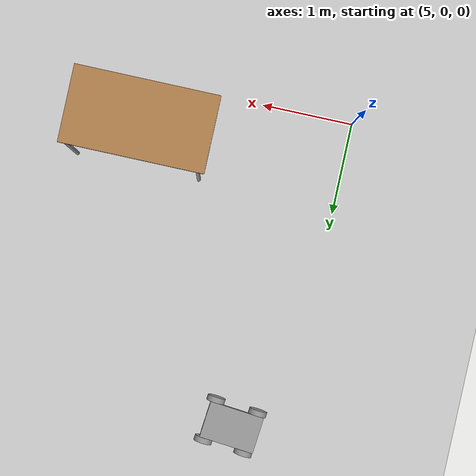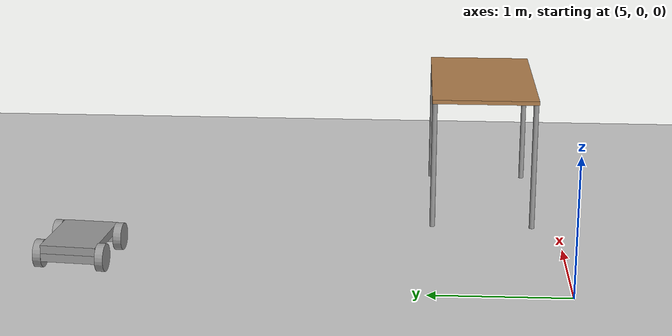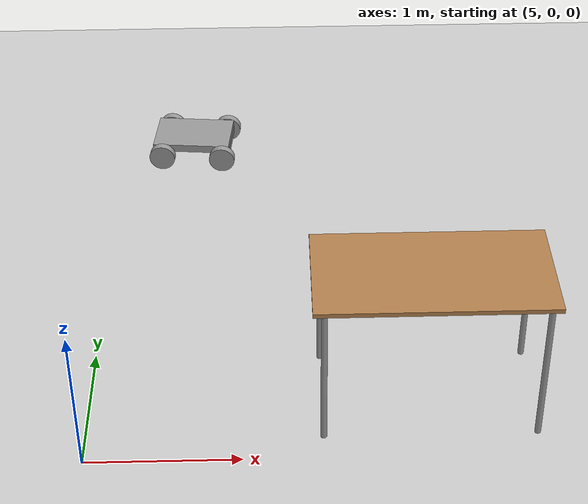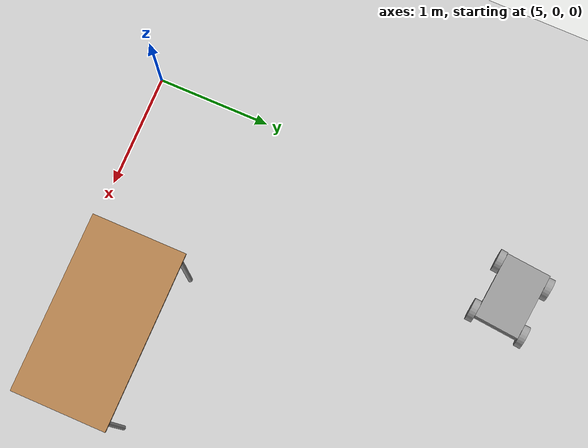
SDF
<sdf version="1.6">
 <world name="default">
  <model name="ground_plane">
   <static>1</static>
   <link name="link">
    <collision name="collision">
     <geometry><plane><normal>0 0 1</normal><size>100 100</size></plane></geometry>
     <surface>
      <contact><collide_bitmask>65535</collide_bitmask></contact>
      <friction><ode><mu>100</mu><mu2>50</mu2></ode></friction>
     </surface>
    </collision>
    <visual name="visual">
     <cast_shadows>0</cast_shadows>
     <geometry><plane><normal>0 0 1</normal><size>100 100</size></plane></geometry>
     <material>
      <script><uri>file://media/materials/scripts/gazebo.material</uri><name>Gazebo/Grey</name></script>
     </material>
    </visual>
   </link>
  </model>
  <model name="FourWheeledRobot_0">
   <link name="link_0">
    <pose>-0.26 0 -0.008571 0 -0 0</pose>
    <inertial>
     <mass>1</mass>
     <inertia>
      <ixx>0.166667</ixx>
      <ixy>0</ixy>
      <ixz>0</ixz>
      <iyy>0.166667</iyy>
      <iyz>0</iyz>
      <izz>0.166667</izz>
     </inertia>
    </inertial>
    <visual name="visual">
     <geometry><box><size>0.1 0.4 0.06</size></box></geometry>
     <material>
      <lighting>1</lighting>
      <script><uri>file://media/materials/scripts/gazebo.material</uri><name>Gazebo/Grey</name></script>
      <shader type="pixel"><normal_map>__default__</normal_map></shader>
      <ambient>0.3 0.3 0.3 1</ambient>
      <diffuse>0.7 0.7 0.7 1</diffuse>
      <specular>0.01 0.01 0.01 1</specular>
      <emissive>0 0 0 1</emissive>
     </material>
    </visual>
    <collision name="collision">
     <geometry><box><size>0.1 0.4 0.06</size></box></geometry>
     <surface>
      <friction>
       <ode><mu>1</mu><mu2>1</mu2><fdir1>0 0 0</fdir1><slip1>0</slip1><slip2>0</slip2></ode>
       <torsional>
        <coefficient>1</coefficient>
        <patch_radius>0</patch_radius>
        <surface_radius>0</surface_radius>
        <use_patch_radius>1</use_patch_radius>
        <ode><slip>0</slip></ode>
       </torsional>
      </friction>
      <bounce><restitution_coefficient>0</restitution_coefficient><threshold>1e+06</threshold></bounce>
      <contact>
       <collide_without_contact>0</collide_without_contact>
       <collide_without_contact_bitmask>1</collide_without_contact_bitmask>
       <collide_bitmask>1</collide_bitmask>
       <ode>
        <soft_cfm>0</soft_cfm>
        <soft_erp>0.2</soft_erp>
        <kp>1e+13</kp>
        <kd>1</kd>
        <max_vel>0.01</max_vel>
        <min_depth>0</min_depth>
       </ode>
       <bullet>
        <split_impulse>1</split_impulse>
        <split_impulse_penetration_threshold>-0.01</split_impulse_penetration_threshold>
        <soft_cfm>0</soft_cfm>
        <soft_erp>0.2</soft_erp>
        <kp>1e+13</kp>
        <kd>1</kd>
       </bullet>
      </contact>
     </surface>
    </collision>
   </link>
   <link name="link_0_clone">
    <pose>0.24 0 -0.008571 0 -0 0</pose>
    <inertial>
     <mass>1</mass>
     <inertia>
      <ixx>0.166667</ixx>
      <ixy>0</ixy>
      <ixz>0</ixz>
      <iyy>0.166667</iyy>
      <iyz>0</iyz>
      <izz>0.166667</izz>
     </inertia>
    </inertial>
    <visual name="visual">
     <geometry><box><size>0.1 0.4 0.06</size></box></geometry>
     <material>
      <lighting>1</lighting>
      <script><uri>file://media/materials/scripts/gazebo.material</uri><name>Gazebo/Grey</name></script>
      <shader type="pixel"><normal_map>__default__</normal_map></shader>
      <ambient>0.3 0.3 0.3 1</ambient>
      <diffuse>0.7 0.7 0.7 1</diffuse>
      <specular>0.01 0.01 0.01 1</specular>
      <emissive>0 0 0 1</emissive>
     </material>
    </visual>
    <collision name="collision">
     <geometry><box><size>0.1 0.4 0.06</size></box></geometry>
     <surface>
      <friction>
       <ode><mu>1</mu><mu2>1</mu2><fdir1>0 0 0</fdir1><slip1>0</slip1><slip2>0</slip2></ode>
       <torsional>
        <coefficient>1</coefficient>
        <patch_radius>0</patch_radius>
        <surface_radius>0</surface_radius>
        <use_patch_radius>1</use_patch_radius>
        <ode><slip>0</slip></ode>
       </torsional>
      </friction>
      <bounce><restitution_coefficient>0</restitution_coefficient><threshold>1e+06</threshold></bounce>
      <contact>
       <collide_without_contact>0</collide_without_contact>
       <collide_without_contact_bitmask>1</collide_without_contact_bitmask>
       <collide_bitmask>1</collide_bitmask>
       <ode>
        <soft_cfm>0</soft_cfm>
        <soft_erp>0.2</soft_erp>
        <kp>1e+13</kp>
        <kd>1</kd>
        <max_vel>0.01</max_vel>
        <min_depth>0</min_depth>
       </ode>
       <bullet>
        <split_impulse>1</split_impulse>
        <split_impulse_penetration_threshold>-0.01</split_impulse_penetration_threshold>
        <soft_cfm>0</soft_cfm>
        <soft_erp>0.2</soft_erp>
        <kp>1e+13</kp>
        <kd>1</kd>
       </bullet>
      </contact>
     </surface>
    </collision>
   </link>
   <link name="link_1">
    <pose>-0.01 0 0.051429 0 -0 0</pose>
    <inertial>
     <mass>1</mass>
     <inertia>
      <ixx>0.166667</ixx>
      <ixy>0</ixy>
      <ixz>0</ixz>
      <iyy>0.166667</iyy>
      <iyz>0</iyz>
      <izz>0.166667</izz>
     </inertia>
    </inertial>
    <visual name="visual">
     <geometry><box><size>0.6 0.4 0.06</size></box></geometry>
     <material>
      <lighting>1</lighting>
      <script><uri>file://media/materials/scripts/gazebo.material</uri><name>Gazebo/Grey</name></script>
      <shader type="pixel"><normal_map>__default__</normal_map></shader>
      <ambient>0.3 0.3 0.3 1</ambient>
      <diffuse>0.7 0.7 0.7 1</diffuse>
      <specular>0.01 0.01 0.01 1</specular>
      <emissive>0 0 0 1</emissive>
     </material>
    </visual>
    <collision name="collision">
     <geometry><box><size>0.6 0.4 0.06</size></box></geometry>
     <surface>
      <friction>
       <ode><mu>1</mu><mu2>1</mu2><fdir1>0 0 0</fdir1><slip1>0</slip1><slip2>0</slip2></ode>
       <torsional>
        <coefficient>1</coefficient>
        <patch_radius>0</patch_radius>
        <surface_radius>0</surface_radius>
        <use_patch_radius>1</use_patch_radius>
        <ode><slip>0</slip></ode>
       </torsional>
      </friction>
      <bounce><restitution_coefficient>0</restitution_coefficient><threshold>1e+06</threshold></bounce>
      <contact>
       <collide_without_contact>0</collide_without_contact>
       <collide_without_contact_bitmask>1</collide_without_contact_bitmask>
       <collide_bitmask>1</collide_bitmask>
       <ode>
        <soft_cfm>0</soft_cfm>
        <soft_erp>0.2</soft_erp>
        <kp>1e+13</kp>
        <kd>1</kd>
        <max_vel>0.01</max_vel>
        <min_depth>0</min_depth>
       </ode>
       <bullet>
        <split_impulse>1</split_impulse>
        <split_impulse_penetration_threshold>-0.01</split_impulse_penetration_threshold>
        <soft_cfm>0</soft_cfm>
        <soft_erp>0.2</soft_erp>
        <kp>1e+13</kp>
        <kd>1</kd>
       </bullet>
      </contact>
     </surface>
    </collision>
   </link>
   <link name="link_2">
    <pose>-0.235 -0.230013 -0.008571 1.5707 -0 0</pose>
    <inertial>
     <mass>1</mass>
     <inertia><ixx>0.145833</ixx><ixy>0</ixy><ixz>0</ixz><iyy>0.145833</iyy><iyz>0</iyz><izz>0.125</izz></inertia>
    </inertial>
    <visual name="visual">
     <geometry><cylinder><radius>0.1</radius><length>0.06</length></cylinder></geometry>
     <material>
      <lighting>1</lighting>
      <script><uri>file://media/materials/scripts/gazebo.material</uri><name>Gazebo/Grey</name></script>
      <shader type="pixel"><normal_map>__default__</normal_map></shader>
      <ambient>0.3 0.3 0.3 1</ambient>
      <diffuse>0.7 0.7 0.7 1</diffuse>
      <specular>0.01 0.01 0.01 1</specular>
      <emissive>0 0 0 1</emissive>
     </material>
    </visual>
    <collision name="collision">
     <geometry><cylinder><radius>0.1</radius><length>0.06</length></cylinder></geometry>
     <surface>
      <friction>
       <ode><mu>1</mu><mu2>1</mu2><fdir1>0 0 0</fdir1><slip1>0</slip1><slip2>0</slip2></ode>
       <torsional>
        <coefficient>1</coefficient>
        <patch_radius>0</patch_radius>
        <surface_radius>0</surface_radius>
        <use_patch_radius>1</use_patch_radius>
        <ode><slip>0</slip></ode>
       </torsional>
      </friction>
      <bounce><restitution_coefficient>0</restitution_coefficient><threshold>1e+06</threshold></bounce>
      <contact>
       <collide_without_contact>0</collide_without_contact>
       <collide_without_contact_bitmask>1</collide_without_contact_bitmask>
       <collide_bitmask>1</collide_bitmask>
       <ode>
        <soft_cfm>0</soft_cfm>
        <soft_erp>0.2</soft_erp>
        <kp>1e+13</kp>
        <kd>1</kd>
        <max_vel>0.01</max_vel>
        <min_depth>0</min_depth>
       </ode>
       <bullet>
        <split_impulse>1</split_impulse>
        <split_impulse_penetration_threshold>-0.01</split_impulse_penetration_threshold>
        <soft_cfm>0</soft_cfm>
        <soft_erp>0.2</soft_erp>
        <kp>1e+13</kp>
        <kd>1</kd>
       </bullet>
      </contact>
     </surface>
    </collision>
   </link>
   <link name="link_2_clone">
    <pose>-0.215 0.23001 -0.008571 1.5707 -0 0</pose>
    <inertial>
     <mass>1</mass>
     <inertia><ixx>0.145833</ixx><ixy>0</ixy><ixz>0</ixz><iyy>0.145833</iyy><iyz>0</iyz><izz>0.125</izz></inertia>
    </inertial>
    <visual name="visual">
     <geometry><cylinder><radius>0.1</radius><length>0.06</length></cylinder></geometry>
     <material>
      <lighting>1</lighting>
      <script><uri>file://media/materials/scripts/gazebo.material</uri><name>Gazebo/Grey</name></script>
      <shader type="pixel"><normal_map>__default__</normal_map></shader>
      <ambient>0.3 0.3 0.3 1</ambient>
      <diffuse>0.7 0.7 0.7 1</diffuse>
      <specular>0.01 0.01 0.01 1</specular>
      <emissive>0 0 0 1</emissive>
     </material>
    </visual>
    <collision name="collision">
     <geometry><cylinder><radius>0.1</radius><length>0.06</length></cylinder></geometry>
     <surface>
      <friction>
       <ode><mu>1</mu><mu2>1</mu2><fdir1>0 0 0</fdir1><slip1>0</slip1><slip2>0</slip2></ode>
       <torsional>
        <coefficient>1</coefficient>
        <patch_radius>0</patch_radius>
        <surface_radius>0</surface_radius>
        <use_patch_radius>1</use_patch_radius>
        <ode><slip>0</slip></ode>
       </torsional>
      </friction>
      <bounce><restitution_coefficient>0</restitution_coefficient><threshold>1e+06</threshold></bounce>
      <contact>
       <collide_without_contact>0</collide_without_contact>
       <collide_without_contact_bitmask>1</collide_without_contact_bitmask>
       <collide_bitmask>1</collide_bitmask>
       <ode>
        <soft_cfm>0</soft_cfm>
        <soft_erp>0.2</soft_erp>
        <kp>1e+13</kp>
        <kd>1</kd>
        <max_vel>0.01</max_vel>
        <min_depth>0</min_depth>
       </ode>
       <bullet>
        <split_impulse>1</split_impulse>
        <split_impulse_penetration_threshold>-0.01</split_impulse_penetration_threshold>
        <soft_cfm>0</soft_cfm>
        <soft_erp>0.2</soft_erp>
        <kp>1e+13</kp>
        <kd>1</kd>
       </bullet>
      </contact>
     </surface>
    </collision>
   </link>
   <link name="link_2_clone_0">
    <pose>0.24 -0.230009 -0.008571 1.5707 -0 0</pose>
    <inertial>
     <mass>1</mass>
     <inertia><ixx>0.145833</ixx><ixy>0</ixy><ixz>0</ixz><iyy>0.145833</iyy><iyz>0</iyz><izz>0.125</izz></inertia>
    </inertial>
    <visual name="visual">
     <geometry><cylinder><radius>0.1</radius><length>0.06</length></cylinder></geometry>
     <material>
      <lighting>1</lighting>
      <script><uri>file://media/materials/scripts/gazebo.material</uri><name>Gazebo/Grey</name></script>
      <shader type="pixel"><normal_map>__default__</normal_map></shader>
      <ambient>0.3 0.3 0.3 1</ambient>
      <diffuse>0.7 0.7 0.7 1</diffuse>
      <specular>0.01 0.01 0.01 1</specular>
      <emissive>0 0 0 1</emissive>
     </material>
    </visual>
    <collision name="collision">
     <geometry><cylinder><radius>0.1</radius><length>0.06</length></cylinder></geometry>
     <surface>
      <friction>
       <ode><mu>1</mu><mu2>1</mu2><fdir1>0 0 0</fdir1><slip1>0</slip1><slip2>0</slip2></ode>
       <torsional>
        <coefficient>1</coefficient>
        <patch_radius>0</patch_radius>
        <surface_radius>0</surface_radius>
        <use_patch_radius>1</use_patch_radius>
        <ode><slip>0</slip></ode>
       </torsional>
      </friction>
      <bounce><restitution_coefficient>0</restitution_coefficient><threshold>1e+06</threshold></bounce>
      <contact>
       <collide_without_contact>0</collide_without_contact>
       <collide_without_contact_bitmask>1</collide_without_contact_bitmask>
       <collide_bitmask>1</collide_bitmask>
       <ode>
        <soft_cfm>0</soft_cfm>
        <soft_erp>0.2</soft_erp>
        <kp>1e+13</kp>
        <kd>1</kd>
        <max_vel>0.01</max_vel>
        <min_depth>0</min_depth>
       </ode>
       <bullet>
        <split_impulse>1</split_impulse>
        <split_impulse_penetration_threshold>-0.01</split_impulse_penetration_threshold>
        <soft_cfm>0</soft_cfm>
        <soft_erp>0.2</soft_erp>
        <kp>1e+13</kp>
        <kd>1</kd>
       </bullet>
      </contact>
     </surface>
    </collision>
   </link>
   <link name="link_2_clone_1">
    <pose>0.24 0.23001 -0.008571 1.5707 -0 0</pose>
    <inertial>
     <mass>1</mass>
     <inertia><ixx>0.145833</ixx><ixy>0</ixy><ixz>0</ixz><iyy>0.145833</iyy><iyz>0</iyz><izz>0.125</izz></inertia>
    </inertial>
    <visual name="visual">
     <geometry><cylinder><radius>0.1</radius><length>0.06</length></cylinder></geometry>
     <material>
      <lighting>1</lighting>
      <script><uri>file://media/materials/scripts/gazebo.material</uri><name>Gazebo/Grey</name></script>
      <shader type="pixel"><normal_map>__default__</normal_map></shader>
      <ambient>0.3 0.3 0.3 1</ambient>
      <diffuse>0.7 0.7 0.7 1</diffuse>
      <specular>0.01 0.01 0.01 1</specular>
      <emissive>0 0 0 1</emissive>
     </material>
    </visual>
    <collision name="collision">
     <geometry><cylinder><radius>0.1</radius><length>0.06</length></cylinder></geometry>
     <surface>
      <friction>
       <ode><mu>1</mu><mu2>1</mu2><fdir1>0 0 0</fdir1><slip1>0</slip1><slip2>0</slip2></ode>
       <torsional>
        <coefficient>1</coefficient>
        <patch_radius>0</patch_radius>
        <surface_radius>0</surface_radius>
        <use_patch_radius>1</use_patch_radius>
        <ode><slip>0</slip></ode>
       </torsional>
      </friction>
      <bounce><restitution_coefficient>0</restitution_coefficient><threshold>1e+06</threshold></bounce>
      <contact>
       <collide_without_contact>0</collide_without_contact>
       <collide_without_contact_bitmask>1</collide_without_contact_bitmask>
       <collide_bitmask>1</collide_bitmask>
       <ode>
        <soft_cfm>0</soft_cfm>
        <soft_erp>0.2</soft_erp>
        <kp>1e+13</kp>
        <kd>1</kd>
        <max_vel>0.01</max_vel>
        <min_depth>0</min_depth>
       </ode>
       <bullet>
        <split_impulse>1</split_impulse>
        <split_impulse_penetration_threshold>-0.01</split_impulse_penetration_threshold>
        <soft_cfm>0</soft_cfm>
        <soft_erp>0.2</soft_erp>
        <kp>1e+13</kp>
        <kd>1</kd>
       </bullet>
      </contact>
     </surface>
    </collision>
   </link>
   <joint name="link_0_JOINT_4" type="revolute">
    <parent>link_0</parent>
    <child>link_2</child>
    <axis>
     <xyz>0 0 1</xyz>
     <use_parent_model_frame>0</use_parent_model_frame>
     <limit>
      <lower>-1.79769e+308</lower>
      <upper>1.79769e+308</upper>
      <effort>-1</effort>
      <velocity>-1</velocity>
     </limit>
     <dynamics>
      <spring_reference>0</spring_reference>
      <spring_stiffness>0</spring_stiffness>
      <damping>0</damping>
     </dynamics>
    </axis>
    <physics>
     <ode><limit><cfm>0</cfm><erp>0.2</erp></limit><suspension><cfm>0</cfm><erp>0.2</erp></suspension></ode>
    </physics>
   </joint>
   <joint name="link_0_JOINT_5" type="revolute">
    <parent>link_0</parent>
    <child>link_2_clone</child>
    <axis>
     <xyz>0 0 1</xyz>
     <use_parent_model_frame>0</use_parent_model_frame>
     <limit>
      <lower>-1.79769e+308</lower>
      <upper>1.79769e+308</upper>
      <effort>-1</effort>
      <velocity>-1</velocity>
     </limit>
     <dynamics>
      <spring_reference>0</spring_reference>
      <spring_stiffness>0</spring_stiffness>
      <damping>0</damping>
     </dynamics>
    </axis>
    <physics>
     <ode><limit><cfm>0</cfm><erp>0.2</erp></limit><suspension><cfm>0</cfm><erp>0.2</erp></suspension></ode>
    </physics>
   </joint>
   <joint name="link_0_clone_JOINT_6" type="revolute">
    <parent>link_0_clone</parent>
    <child>link_2_clone_0</child>
    <axis>
     <xyz>0 0 1</xyz>
     <use_parent_model_frame>0</use_parent_model_frame>
     <limit>
      <lower>-1.79769e+308</lower>
      <upper>1.79769e+308</upper>
      <effort>-1</effort>
      <velocity>-1</velocity>
     </limit>
     <dynamics>
      <spring_reference>0</spring_reference>
      <spring_stiffness>0</spring_stiffness>
      <damping>0</damping>
     </dynamics>
    </axis>
    <physics>
     <ode><limit><cfm>0</cfm><erp>0.2</erp></limit><suspension><cfm>0</cfm><erp>0.2</erp></suspension></ode>
    </physics>
   </joint>
   <joint name="link_0_clone_JOINT_7" type="revolute">
    <parent>link_0_clone</parent>
    <child>link_2_clone_1</child>
    <axis>
     <xyz>0 0 1</xyz>
     <use_parent_model_frame>0</use_parent_model_frame>
     <limit>
      <lower>-1.79769e+308</lower>
      <upper>1.79769e+308</upper>
      <effort>-1</effort>
      <velocity>-1</velocity>
     </limit>
     <dynamics>
      <spring_reference>0</spring_reference>
      <spring_stiffness>0</spring_stiffness>
      <damping>0</damping>
     </dynamics>
    </axis>
    <physics>
     <ode><limit><cfm>0</cfm><erp>0.2</erp></limit><suspension><cfm>0</cfm><erp>0.2</erp></suspension></ode>
    </physics>
   </joint>
   <joint name="link_1_JOINT_2" type="screw">
    <parent>link_1</parent>
    <child>link_0</child>
    <axis>
     <xyz>0 0 1</xyz>
     <use_parent_model_frame>0</use_parent_model_frame>
     <limit>
      <lower>-1.79769e+308</lower>
      <upper>1.79769e+308</upper>
      <effort>-1</effort>
      <velocity>-1</velocity>
     </limit>
     <dynamics>
      <spring_reference>0</spring_reference>
      <spring_stiffness>0</spring_stiffness>
      <damping>0</damping>
     </dynamics>
    </axis>
    <physics>
     <ode><limit><cfm>0</cfm><erp>0.2</erp></limit><suspension><cfm>0</cfm><erp>0.2</erp></suspension></ode>
    </physics>
    <thread_pitch>1</thread_pitch>
   </joint>
   <joint name="link_1_JOINT_3" type="screw">
    <parent>link_1</parent>
    <child>link_0_clone</child>
    <axis>
     <xyz>0 0 1</xyz>
     <use_parent_model_frame>0</use_parent_model_frame>
     <limit>
      <lower>-1.79769e+308</lower>
      <upper>1.79769e+308</upper>
      <effort>-1</effort>
      <velocity>-1</velocity>
     </limit>
     <dynamics>
      <spring_reference>0</spring_reference>
      <spring_stiffness>0</spring_stiffness>
      <damping>0</damping>
     </dynamics>
    </axis>
    <physics>
     <ode><limit><cfm>0</cfm><erp>0.2</erp></limit><suspension><cfm>0</cfm><erp>0.2</erp></suspension></ode>
    </physics>
    <thread_pitch>1</thread_pitch>
   </joint>
   <static>0</static>
   <pose>5.59043 3.49948 0.108571 -2e-06 3e-06 -0.094352</pose>
  </model>
  <model name="table_4">
   <static>1</static>
   <link name="link">
    <collision name="surface">
     <pose>0 0 1 0 -0 0</pose>
     <geometry><box><size>1.5 0.8 0.03</size></box></geometry>
     <surface><friction><ode><mu>0.6</mu><mu2>0.6</mu2></ode></friction></surface>
    </collision>
    <visual name="visual1">
     <pose>0 0 1 0 -0 0</pose>
     <geometry><box><size>1.5 0.8 0.03</size></box></geometry>
     <material>
      <script><uri>file://media/materials/scripts/gazebo.material</uri><name>Gazebo/Wood</name></script>
     </material>
    </visual>
    <collision name="front_left_leg">
     <pose>0.68 0.38 0.5 0 -0 0</pose>
     <geometry><cylinder><radius>0.02</radius><length>1</length></cylinder></geometry>
    </collision>
    <visual name="front_left_leg">
     <pose>0.68 0.38 0.5 0 -0 0</pose>
     <geometry><cylinder><radius>0.02</radius><length>1</length></cylinder></geometry>
     <material>
      <script><uri>file://media/materials/scripts/gazebo.material</uri><name>Gazebo/Grey</name></script>
     </material>
    </visual>
    <collision name="front_right_leg">
     <pose>0.68 -0.38 0.5 0 -0 0</pose>
     <geometry><cylinder><radius>0.02</radius><length>1</length></cylinder></geometry>
    </collision>
    <visual name="front_right_leg">
     <pose>0.68 -0.38 0.5 0 -0 0</pose>
     <geometry><cylinder><radius>0.02</radius><length>1</length></cylinder></geometry>
     <material>
      <script><uri>file://media/materials/scripts/gazebo.material</uri><name>Gazebo/Grey</name></script>
     </material>
    </visual>
    <collision name="back_right_leg">
     <pose>-0.68 -0.38 0.5 0 -0 0</pose>
     <geometry><cylinder><radius>0.02</radius><length>1</length></cylinder></geometry>
    </collision>
    <visual name="back_right_leg">
     <pose>-0.68 -0.38 0.5 0 -0 0</pose>
     <geometry><cylinder><radius>0.02</radius><length>1</length></cylinder></geometry>
     <material>
      <script><uri>file://media/materials/scripts/gazebo.material</uri><name>Gazebo/Grey</name></script>
     </material>
    </visual>
    <collision name="back_left_leg">
     <pose>-0.68 0.38 0.5 0 -0 0</pose>
     <geometry><cylinder><radius>0.02</radius><length>1</length></cylinder></geometry>
    </collision>
    <visual name="back_left_leg">
     <pose>-0.68 0.38 0.5 0 -0 0</pose>
     <geometry><cylinder><radius>0.02</radius><length>1</length></cylinder></geometry>
     <material>
      <script><uri>file://media/materials/scripts/gazebo.material</uri><name>Gazebo/Grey</name></script>
     </material>
    </visual>
   </link>
   <pose>7.18719 0.570269 0 0 -0 0</pose>
  </model>
 </world>
</sdf>
